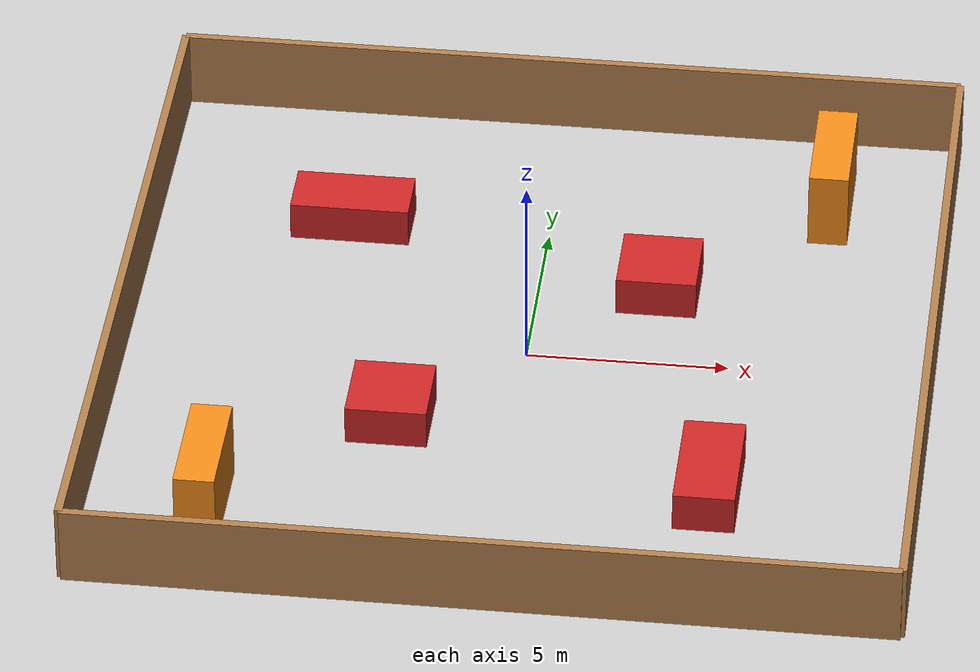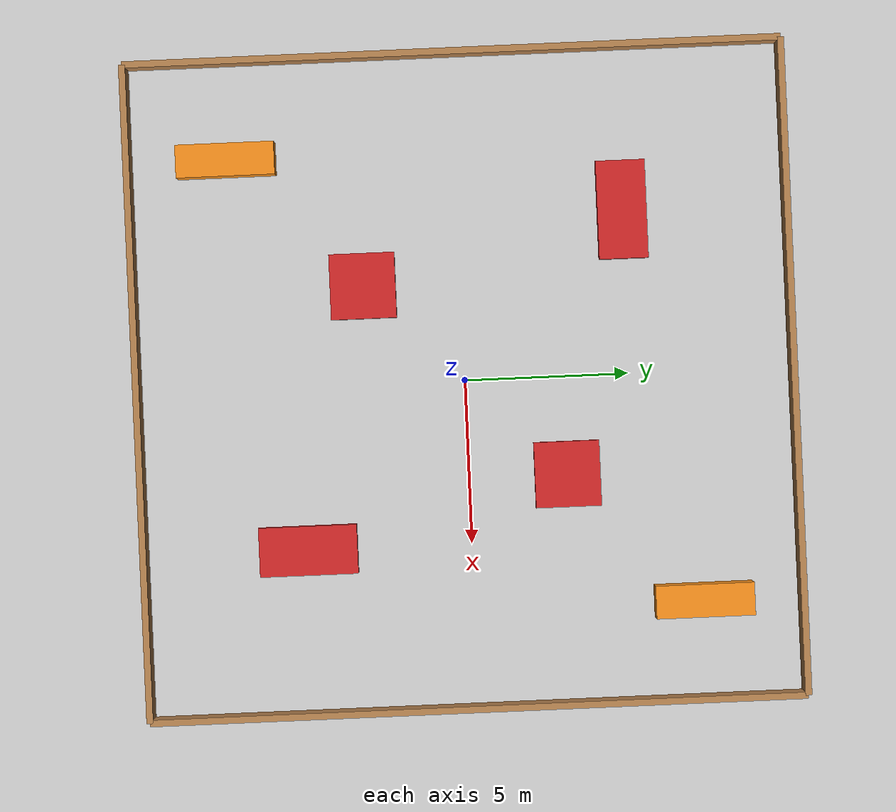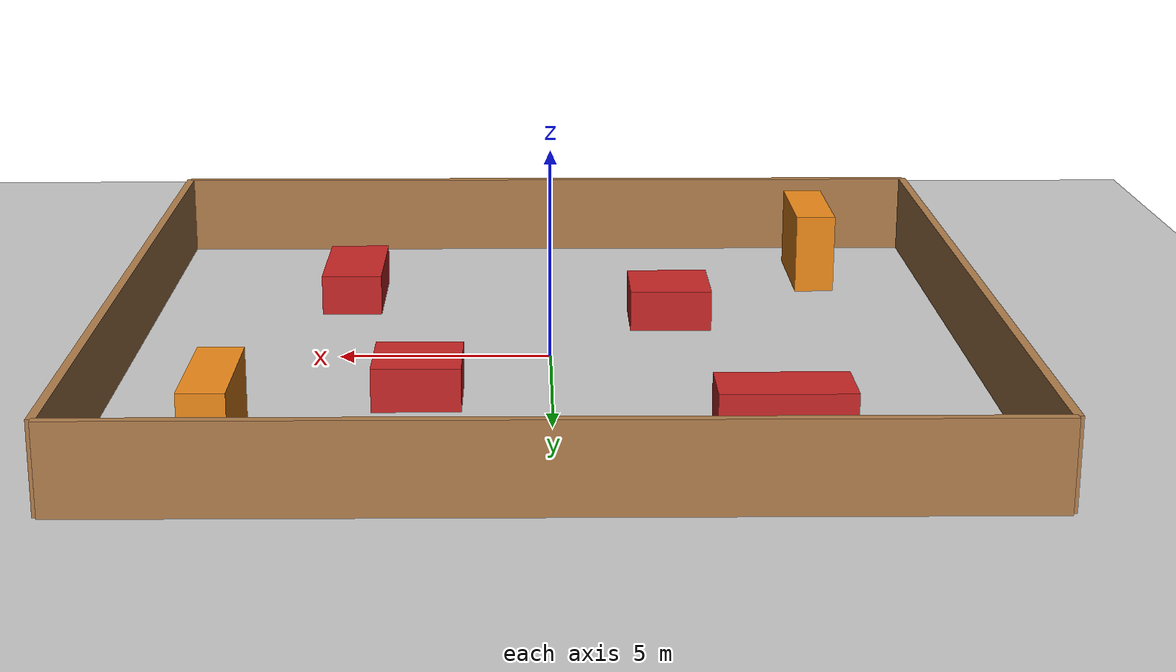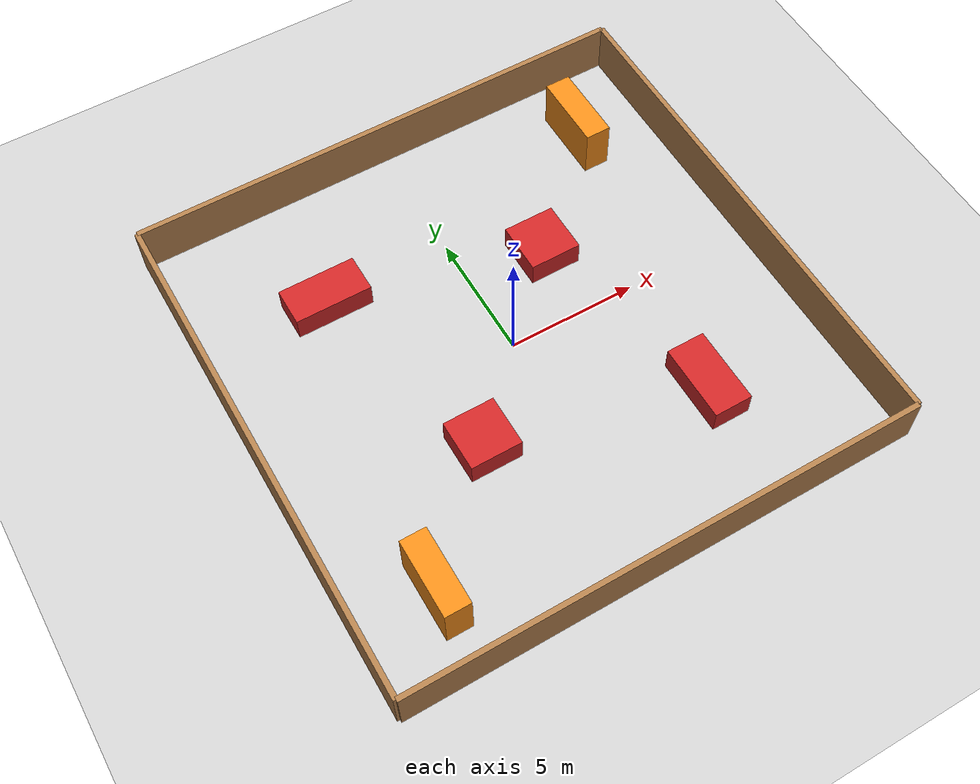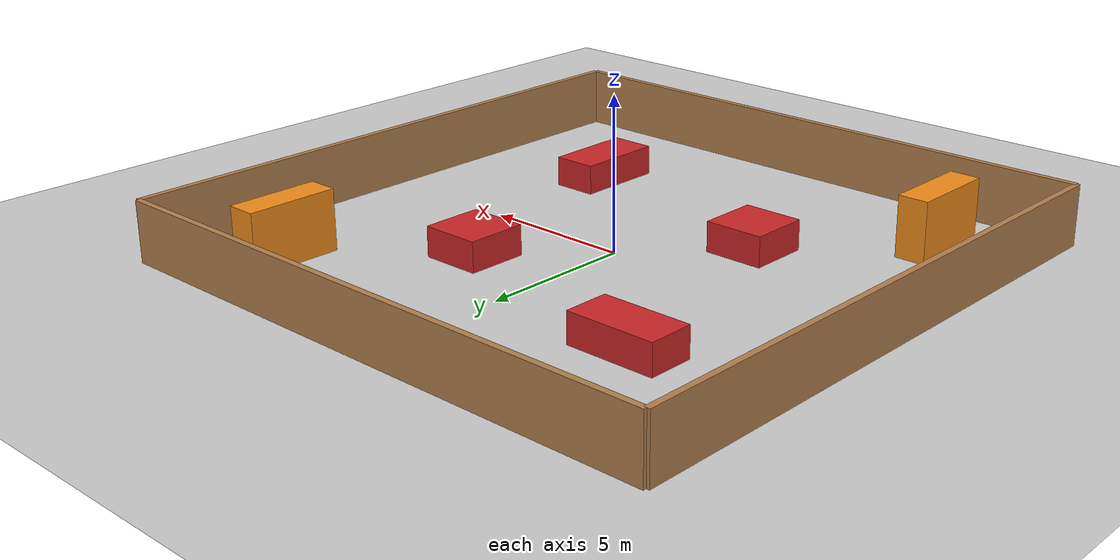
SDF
<?xml version="1.0" ?>
<sdf version="1.6">
  <world name="warehouse">

    <!-- Physics -->
    <physics name="default_physics" default="0" type="ode">
      <gravity>0 0 -9.8066</gravity>
      <ode>
        <solver>
          <type>quick</type>
          <iters>150</iters>
          <sor>1.3</sor>
        </solver>
        <constraints>
          <cfm>0.00001</cfm>
          <erp>0.2</erp>
          <contact_max_correcting_vel>1000</contact_max_correcting_vel>
          <contact_surface_layer>0.01</contact_surface_layer>
        </constraints>
      </ode>
      <max_step_size>0.004</max_step_size>
      <real_time_factor>1</real_time_factor>
      <real_time_update_rate>250</real_time_update_rate>
    </physics>

    <!-- Scene -->
    <scene>
      <ambient>0.4 0.4 0.4 1</ambient>
      <background>0.7 0.7 0.7 1</background>
      <shadows>true</shadows>
    </scene>

    <!-- Sun -->
    <include>
      <uri>model://sun</uri>
    </include>

    <!-- Ground plane -->
    <model name="ground_plane">
      <static>true</static>
      <link name="link">
        <collision name="collision">
          <geometry>
            <plane>
              <normal>0 0 1</normal>
              <size>50 50</size>
            </plane>
          </geometry>
        </collision>
        <visual name="visual">
          <geometry>
            <plane>
              <normal>0 0 1</normal>
              <size>50 50</size>
            </plane>
          </geometry>
          <material>
            <script>
              <uri>file://media/materials/scripts/gazebo.material</uri>
              <name>Gazebo/Grey</name>
            </script>
          </material>
        </visual>
      </link>
    </model>

    <!-- Warehouse walls -->
    <model name="wall_north">
      <static>true</static>
      <pose>0 10 1 0 0 0</pose>
      <link name="link">
        <collision name="collision">
          <geometry>
            <box>
              <size>20 0.2 2</size>
            </box>
          </geometry>
        </collision>
        <visual name="visual">
          <geometry>
            <box>
              <size>20 0.2 2</size>
            </box>
          </geometry>
          <material>
            <script>
              <uri>file://media/materials/scripts/gazebo.material</uri>
              <name>Gazebo/Wood</name>
            </script>
          </material>
        </visual>
      </link>
    </model>

    <model name="wall_south">
      <static>true</static>
      <pose>0 -10 1 0 0 0</pose>
      <link name="link">
        <collision name="collision">
          <geometry>
            <box>
              <size>20 0.2 2</size>
            </box>
          </geometry>
        </collision>
        <visual name="visual">
          <geometry>
            <box>
              <size>20 0.2 2</size>
            </box>
          </geometry>
          <material>
            <script>
              <uri>file://media/materials/scripts/gazebo.material</uri>
              <name>Gazebo/Wood</name>
            </script>
          </material>
        </visual>
      </link>
    </model>

    <model name="wall_east">
      <static>true</static>
      <pose>10 0 1 0 0 0</pose>
      <link name="link">
        <collision name="collision">
          <geometry>
            <box>
              <size>0.2 20 2</size>
            </box>
          </geometry>
        </collision>
        <visual name="visual">
          <geometry>
            <box>
              <size>0.2 20 2</size>
            </box>
          </geometry>
          <material>
            <script>
              <uri>file://media/materials/scripts/gazebo.material</uri>
              <name>Gazebo/Wood</name>
            </script>
          </material>
        </visual>
      </link>
    </model>

    <model name="wall_west">
      <static>true</static>
      <pose>-10 0 1 0 0 0</pose>
      <link name="link">
        <collision name="collision">
          <geometry>
            <box>
              <size>0.2 20 2</size>
            </box>
          </geometry>
        </collision>
        <visual name="visual">
          <geometry>
            <box>
              <size>0.2 20 2</size>
            </box>
          </geometry>
          <material>
            <script>
              <uri>file://media/materials/scripts/gazebo.material</uri>
              <name>Gazebo/Wood</name>
            </script>
          </material>
        </visual>
      </link>
    </model>

    <!-- Obstacles/No-go areas -->
    <model name="obstacle_1">
      <static>true</static>
      <pose>3 3 0.5 0 0 0</pose>
      <link name="link">
        <collision name="collision">
          <geometry>
            <box>
              <size>2 2 1</size>
            </box>
          </geometry>
        </collision>
        <visual name="visual">
          <geometry>
            <box>
              <size>2 2 1</size>
            </box>
          </geometry>
          <material>
            <script>
              <uri>file://media/materials/scripts/gazebo.material</uri>
              <name>Gazebo/Red</name>
            </script>
          </material>
        </visual>
      </link>
    </model>

    <model name="obstacle_2">
      <static>true</static>
      <pose>-3 -3 0.5 0 0 0</pose>
      <link name="link">
        <collision name="collision">
          <geometry>
            <box>
              <size>2 2 1</size>
            </box>
          </geometry>
        </collision>
        <visual name="visual">
          <geometry>
            <box>
              <size>2 2 1</size>
            </box>
          </geometry>
          <material>
            <script>
              <uri>file://media/materials/scripts/gazebo.material</uri>
              <name>Gazebo/Red</name>
            </script>
          </material>
        </visual>
      </link>
    </model>

    <model name="obstacle_3">
      <static>true</static>
      <pose>5 -5 0.5 0 0 0</pose>
      <link name="link">
        <collision name="collision">
          <geometry>
            <box>
              <size>1.5 3 1</size>
            </box>
          </geometry>
        </collision>
        <visual name="visual">
          <geometry>
            <box>
              <size>1.5 3 1</size>
            </box>
          </geometry>
          <material>
            <script>
              <uri>file://media/materials/scripts/gazebo.material</uri>
              <name>Gazebo/Red</name>
            </script>
          </material>
        </visual>
      </link>
    </model>

    <model name="obstacle_4">
      <static>true</static>
      <pose>-5 5 0.5 0 0 0</pose>
      <link name="link">
        <collision name="collision">
          <geometry>
            <box>
              <size>3 1.5 1</size>
            </box>
          </geometry>
        </collision>
        <visual name="visual">
          <geometry>
            <box>
              <size>3 1.5 1</size>
            </box>
          </geometry>
          <material>
            <script>
              <uri>file://media/materials/scripts/gazebo.material</uri>
              <name>Gazebo/Red</name>
            </script>
          </material>
        </visual>
      </link>
    </model>

    <!-- Storage shelves -->
    <model name="shelf_1">
      <static>true</static>
      <pose>7 7 1 0 0 0</pose>
      <link name="link">
        <collision name="collision">
          <geometry>
            <box>
              <size>1 3 2</size>
            </box>
          </geometry>
        </collision>
        <visual name="visual">
          <geometry>
            <box>
              <size>1 3 2</size>
            </box>
          </geometry>
          <material>
            <script>
              <uri>file://media/materials/scripts/gazebo.material</uri>
              <name>Gazebo/Orange</name>
            </script>
          </material>
        </visual>
      </link>
    </model>

    <model name="shelf_2">
      <static>true</static>
      <pose>-7 -7 1 0 0 0</pose>
      <link name="link">
        <collision name="collision">
          <geometry>
            <box>
              <size>1 3 2</size>
            </box>
          </geometry>
        </collision>
        <visual name="visual">
          <geometry>
            <box>
              <size>1 3 2</size>
            </box>
          </geometry>
          <material>
            <script>
              <uri>file://media/materials/scripts/gazebo.material</uri>
              <name>Gazebo/Orange</name>
            </script>
          </material>
        </visual>
      </link>
    </model>

  </world>
</sdf>
